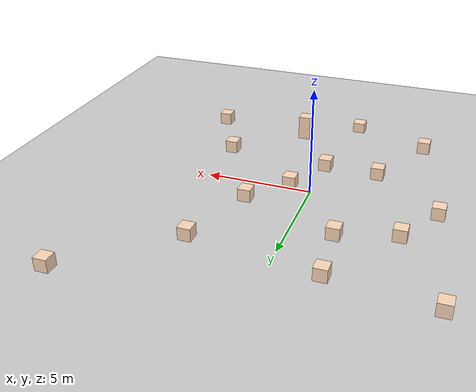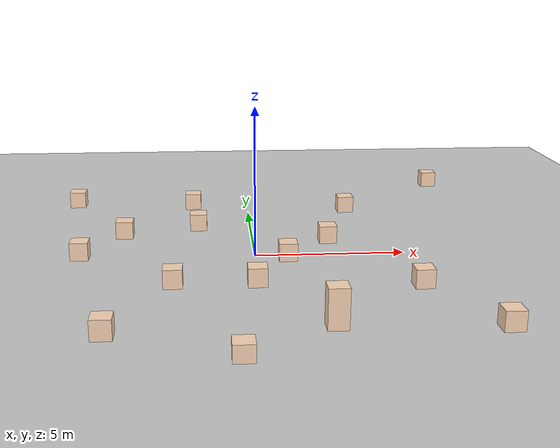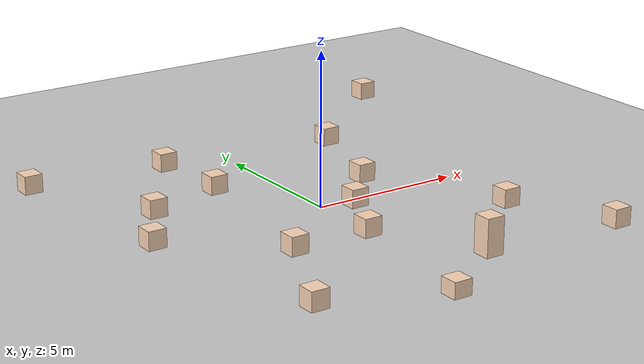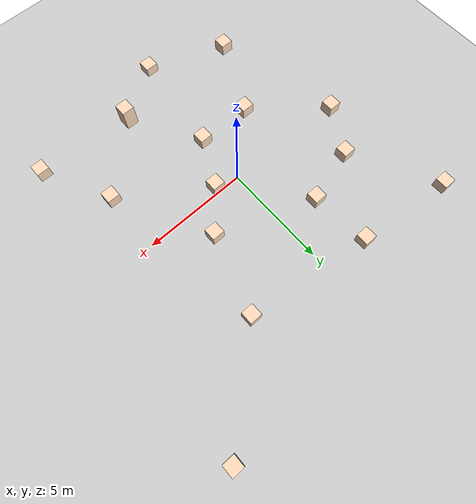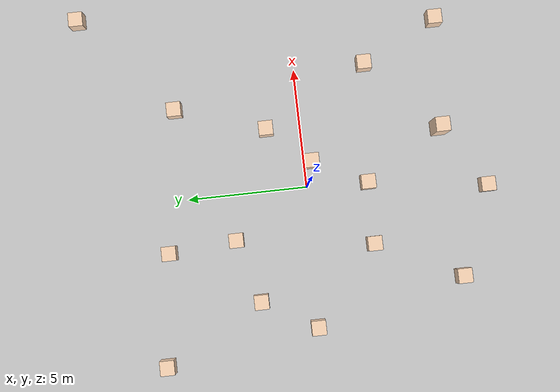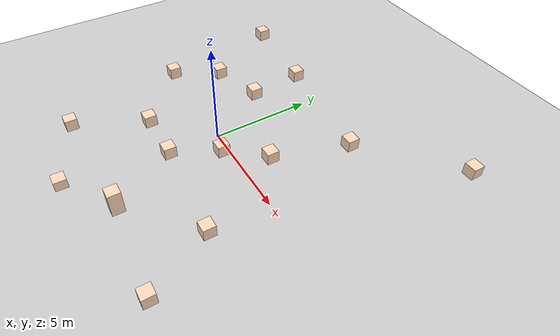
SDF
<sdf version="1.5">
 <world name="default">
  <light name="sun" type="directional">
   <pose>0 0 10 0 -0 0</pose>
   <diffuse>0.8 0.8 0.8 1</diffuse>
   <specular>0.2 0.2 0.2 1</specular>
   <attenuation>
    <range>1000</range>
    <constant>0.9</constant>
    <linear>0.01</linear>
    <quadratic>0.001</quadratic>
   </attenuation>
   <direction>-0.5 0.1 -0.9</direction>
  </light>
  <model name="ground_plane">
   <static>1</static>
   <link name="link">
    <collision name="collision">
     <geometry><plane><normal>0 0 1</normal><size>100 100</size></plane></geometry>
     <surface><friction><ode><mu>100</mu><mu2>50</mu2></ode></friction></surface>
    </collision>
    <visual name="visual">
     <cast_shadows>0</cast_shadows>
     <geometry><plane><normal>0 0 1</normal><size>100 100</size></plane></geometry>
     <material>
      <script><uri>file://media/materials/scripts/gazebo.material</uri><name>Gazebo/Grey</name></script>
     </material>
    </visual>
    <velocity_decay><linear>0</linear><angular>0</angular></velocity_decay>
   </link>
  </model>
  <model name="woods2">
   <link name="link_0">
    <inertial>
     <mass>1</mass>
     <inertia>
      <ixx>0.166667</ixx>
      <ixy>0</ixy>
      <ixz>0</ixz>
      <iyy>0.166667</iyy>
      <iyz>0</iyz>
      <izz>0.166667</izz>
     </inertia>
    </inertial>
    <pose>1.06197 -0.316445 -0.0125 0 -0 0</pose>
    <visual name="visual">
     <geometry><box><size>0.6 0.6 1.2</size></box></geometry>
     <material>
      <lighting>1</lighting>
      <script><uri>file://media/materials/scripts/gazebo.material</uri><name>Gazebo/Grey</name></script>
      <shader type="vertex"><normal_map>__default__</normal_map></shader>
      <ambient>1 0.854 0.725 1</ambient>
      <diffuse>0.7 0.7 0.7 1</diffuse>
      <specular>0.01 0.01 0.01 1</specular>
      <emissive>0 0 0 1</emissive>
     </material>
    </visual>
    <collision name="collision">
     <geometry><box><size>0.6 0.6 1.2</size></box></geometry>
     <surface>
      <friction>
       <ode><mu>1</mu><mu2>1</mu2><fdir1>0 0 0</fdir1><slip1>0</slip1><slip2>0</slip2></ode>
       <torsional>
        <coefficient>1</coefficient>
        <patch_radius>0</patch_radius>
        <surface_radius>0</surface_radius>
        <use_patch_radius>1</use_patch_radius>
        <ode><slip>0</slip></ode>
       </torsional>
      </friction>
      <bounce><restitution_coefficient>0</restitution_coefficient><threshold>1e+06</threshold></bounce>
      <contact>
       <collide_without_contact>0</collide_without_contact>
       <collide_without_contact_bitmask>1</collide_without_contact_bitmask>
       <collide_bitmask>1</collide_bitmask>
       <ode>
        <soft_cfm>0</soft_cfm>
        <soft_erp>0.2</soft_erp>
        <kp>1e+13</kp>
        <kd>1</kd>
        <max_vel>0.01</max_vel>
        <min_depth>0</min_depth>
       </ode>
       <bullet>
        <split_impulse>1</split_impulse>
        <split_impulse_penetration_threshold>-0.01</split_impulse_penetration_threshold>
        <soft_cfm>0</soft_cfm>
        <soft_erp>0.2</soft_erp>
        <kp>1e+13</kp>
        <kd>1</kd>
       </bullet>
      </contact>
     </surface>
    </collision>
   </link>
   <link name="link_0_clone">
    <inertial>
     <mass>1</mass>
     <inertia>
      <ixx>0.166667</ixx>
      <ixy>0</ixy>
      <ixz>0</ixz>
      <iyy>0.166667</iyy>
      <iyz>0</iyz>
      <izz>0.166667</izz>
     </inertia>
    </inertial>
    <pose>2.61216 1.45296 -0.0125 0 -0 0</pose>
    <visual name="visual">
     <geometry><box><size>0.6 0.6 1.2</size></box></geometry>
     <material>
      <lighting>1</lighting>
      <script><uri>file://media/materials/scripts/gazebo.material</uri><name>Gazebo/Grey</name></script>
      <shader type="vertex"><normal_map>__default__</normal_map></shader>
      <ambient>1 0.854 0.725 1</ambient>
      <diffuse>0.7 0.7 0.7 1</diffuse>
      <specular>0.01 0.01 0.01 1</specular>
      <emissive>0 0 0 1</emissive>
     </material>
    </visual>
    <collision name="collision">
     <geometry><box><size>0.6 0.6 1.2</size></box></geometry>
     <surface>
      <friction>
       <ode><mu>1</mu><mu2>1</mu2><fdir1>0 0 0</fdir1><slip1>0</slip1><slip2>0</slip2></ode>
       <torsional>
        <coefficient>1</coefficient>
        <patch_radius>0</patch_radius>
        <surface_radius>0</surface_radius>
        <use_patch_radius>1</use_patch_radius>
        <ode><slip>0</slip></ode>
       </torsional>
      </friction>
      <bounce><restitution_coefficient>0</restitution_coefficient><threshold>1e+06</threshold></bounce>
      <contact>
       <collide_without_contact>0</collide_without_contact>
       <collide_without_contact_bitmask>1</collide_without_contact_bitmask>
       <collide_bitmask>1</collide_bitmask>
       <ode>
        <soft_cfm>0</soft_cfm>
        <soft_erp>0.2</soft_erp>
        <kp>1e+13</kp>
        <kd>1</kd>
        <max_vel>0.01</max_vel>
        <min_depth>0</min_depth>
       </ode>
       <bullet>
        <split_impulse>1</split_impulse>
        <split_impulse_penetration_threshold>-0.01</split_impulse_penetration_threshold>
        <soft_cfm>0</soft_cfm>
        <soft_erp>0.2</soft_erp>
        <kp>1e+13</kp>
        <kd>1</kd>
       </bullet>
      </contact>
     </surface>
    </collision>
   </link>
   <link name="link_0_clone_0">
    <inertial>
     <mass>1</mass>
     <inertia>
      <ixx>0.166667</ixx>
      <ixy>0</ixy>
      <ixz>0</ixz>
      <iyy>0.166667</iyy>
      <iyz>0</iyz>
      <izz>0.166667</izz>
     </inertia>
    </inertial>
    <pose>-2.14536 5.97289 -0.0125 0 -0 0</pose>
    <visual name="visual">
     <geometry><box><size>0.6 0.6 1.2</size></box></geometry>
     <material>
      <lighting>1</lighting>
      <script><uri>file://media/materials/scripts/gazebo.material</uri><name>Gazebo/Grey</name></script>
      <shader type="vertex"><normal_map>__default__</normal_map></shader>
      <ambient>1 0.854 0.725 1</ambient>
      <diffuse>0.7 0.7 0.7 1</diffuse>
      <specular>0.01 0.01 0.01 1</specular>
      <emissive>0 0 0 1</emissive>
     </material>
    </visual>
    <collision name="collision">
     <geometry><box><size>0.6 0.6 1.2</size></box></geometry>
     <surface>
      <friction>
       <ode><mu>1</mu><mu2>1</mu2><fdir1>0 0 0</fdir1><slip1>0</slip1><slip2>0</slip2></ode>
       <torsional>
        <coefficient>1</coefficient>
        <patch_radius>0</patch_radius>
        <surface_radius>0</surface_radius>
        <use_patch_radius>1</use_patch_radius>
        <ode><slip>0</slip></ode>
       </torsional>
      </friction>
      <bounce><restitution_coefficient>0</restitution_coefficient><threshold>1e+06</threshold></bounce>
      <contact>
       <collide_without_contact>0</collide_without_contact>
       <collide_without_contact_bitmask>1</collide_without_contact_bitmask>
       <collide_bitmask>1</collide_bitmask>
       <ode>
        <soft_cfm>0</soft_cfm>
        <soft_erp>0.2</soft_erp>
        <kp>1e+13</kp>
        <kd>1</kd>
        <max_vel>0.01</max_vel>
        <min_depth>0</min_depth>
       </ode>
       <bullet>
        <split_impulse>1</split_impulse>
        <split_impulse_penetration_threshold>-0.01</split_impulse_penetration_threshold>
        <soft_cfm>0</soft_cfm>
        <soft_erp>0.2</soft_erp>
        <kp>1e+13</kp>
        <kd>1</kd>
       </bullet>
      </contact>
     </surface>
    </collision>
   </link>
   <link name="link_0_clone_1">
    <inertial>
     <mass>1</mass>
     <inertia>
      <ixx>0.166667</ixx>
      <ixy>0</ixy>
      <ixz>0</ixz>
      <iyy>0.166667</iyy>
      <iyz>0</iyz>
      <izz>0.166667</izz>
     </inertia>
    </inertial>
    <pose>-4.53022 2.38962 -0.0125 0 -0 0</pose>
    <visual name="visual">
     <geometry><box><size>0.6 0.6 1.2</size></box></geometry>
     <material>
      <lighting>1</lighting>
      <script><uri>file://media/materials/scripts/gazebo.material</uri><name>Gazebo/Grey</name></script>
      <shader type="vertex"><normal_map>__default__</normal_map></shader>
      <ambient>1 0.854 0.725 1</ambient>
      <diffuse>0.7 0.7 0.7 1</diffuse>
      <specular>0.01 0.01 0.01 1</specular>
      <emissive>0 0 0 1</emissive>
     </material>
    </visual>
    <collision name="collision">
     <geometry><box><size>0.6 0.6 1.2</size></box></geometry>
     <surface>
      <friction>
       <ode><mu>1</mu><mu2>1</mu2><fdir1>0 0 0</fdir1><slip1>0</slip1><slip2>0</slip2></ode>
       <torsional>
        <coefficient>1</coefficient>
        <patch_radius>0</patch_radius>
        <surface_radius>0</surface_radius>
        <use_patch_radius>1</use_patch_radius>
        <ode><slip>0</slip></ode>
       </torsional>
      </friction>
      <bounce><restitution_coefficient>0</restitution_coefficient><threshold>1e+06</threshold></bounce>
      <contact>
       <collide_without_contact>0</collide_without_contact>
       <collide_without_contact_bitmask>1</collide_without_contact_bitmask>
       <collide_bitmask>1</collide_bitmask>
       <ode>
        <soft_cfm>0</soft_cfm>
        <soft_erp>0.2</soft_erp>
        <kp>1e+13</kp>
        <kd>1</kd>
        <max_vel>0.01</max_vel>
        <min_depth>0</min_depth>
       </ode>
       <bullet>
        <split_impulse>1</split_impulse>
        <split_impulse_penetration_threshold>-0.01</split_impulse_penetration_threshold>
        <soft_cfm>0</soft_cfm>
        <soft_erp>0.2</soft_erp>
        <kp>1e+13</kp>
        <kd>1</kd>
       </bullet>
      </contact>
     </surface>
    </collision>
   </link>
   <link name="link_0_clone_10">
    <inertial>
     <mass>1</mass>
     <inertia>
      <ixx>0.166667</ixx>
      <ixy>0</ixy>
      <ixz>0</ixz>
      <iyy>0.166667</iyy>
      <iyz>0</iyz>
      <izz>0.166667</izz>
     </inertia>
    </inertial>
    <pose>8.07014 8.91882 -0.0125 0 -0 0</pose>
    <visual name="visual">
     <geometry><box><size>0.6 0.6 1.2</size></box></geometry>
     <material>
      <lighting>1</lighting>
      <script><uri>file://media/materials/scripts/gazebo.material</uri><name>Gazebo/Grey</name></script>
      <shader type="vertex"><normal_map>__default__</normal_map></shader>
      <ambient>1 0.854 0.725 1</ambient>
      <diffuse>0.7 0.7 0.7 1</diffuse>
      <specular>0.01 0.01 0.01 1</specular>
      <emissive>0 0 0 1</emissive>
     </material>
    </visual>
    <collision name="collision">
     <geometry><box><size>0.6 0.6 1.2</size></box></geometry>
     <surface>
      <friction>
       <ode><mu>1</mu><mu2>1</mu2><fdir1>0 0 0</fdir1><slip1>0</slip1><slip2>0</slip2></ode>
       <torsional>
        <coefficient>1</coefficient>
        <patch_radius>0</patch_radius>
        <surface_radius>0</surface_radius>
        <use_patch_radius>1</use_patch_radius>
        <ode><slip>0</slip></ode>
       </torsional>
      </friction>
      <bounce><restitution_coefficient>0</restitution_coefficient><threshold>1e+06</threshold></bounce>
      <contact>
       <collide_without_contact>0</collide_without_contact>
       <collide_without_contact_bitmask>1</collide_without_contact_bitmask>
       <collide_bitmask>1</collide_bitmask>
       <ode>
        <soft_cfm>0</soft_cfm>
        <soft_erp>0.2</soft_erp>
        <kp>1e+13</kp>
        <kd>1</kd>
        <max_vel>0.01</max_vel>
        <min_depth>0</min_depth>
       </ode>
       <bullet>
        <split_impulse>1</split_impulse>
        <split_impulse_penetration_threshold>-0.01</split_impulse_penetration_threshold>
        <soft_cfm>0</soft_cfm>
        <soft_erp>0.2</soft_erp>
        <kp>1e+13</kp>
        <kd>1</kd>
       </bullet>
      </contact>
     </surface>
    </collision>
   </link>
   <link name="link_0_clone_11">
    <inertial>
     <mass>1</mass>
     <inertia>
      <ixx>0.166667</ixx>
      <ixy>0</ixy>
      <ixz>0</ixz>
      <iyy>0.166667</iyy>
      <iyz>0</iyz>
      <izz>0.166667</izz>
     </inertia>
    </inertial>
    <pose>-1.91155 3.16208 -0.0125 0 -0 0</pose>
    <visual name="visual">
     <geometry><box><size>0.6 0.6 1.2</size></box></geometry>
     <material>
      <lighting>1</lighting>
      <script><uri>file://media/materials/scripts/gazebo.material</uri><name>Gazebo/Grey</name></script>
      <shader type="vertex"><normal_map>__default__</normal_map></shader>
      <ambient>1 0.854 0.725 1</ambient>
      <diffuse>0.7 0.7 0.7 1</diffuse>
      <specular>0.01 0.01 0.01 1</specular>
      <emissive>0 0 0 1</emissive>
     </material>
    </visual>
    <collision name="collision">
     <geometry><box><size>0.6 0.6 1.2</size></box></geometry>
     <surface>
      <friction>
       <ode><mu>1</mu><mu2>1</mu2><fdir1>0 0 0</fdir1><slip1>0</slip1><slip2>0</slip2></ode>
       <torsional>
        <coefficient>1</coefficient>
        <patch_radius>0</patch_radius>
        <surface_radius>0</surface_radius>
        <use_patch_radius>1</use_patch_radius>
        <ode><slip>0</slip></ode>
       </torsional>
      </friction>
      <bounce><restitution_coefficient>0</restitution_coefficient><threshold>1e+06</threshold></bounce>
      <contact>
       <collide_without_contact>0</collide_without_contact>
       <collide_without_contact_bitmask>1</collide_without_contact_bitmask>
       <collide_bitmask>1</collide_bitmask>
       <ode>
        <soft_cfm>0</soft_cfm>
        <soft_erp>0.2</soft_erp>
        <kp>1e+13</kp>
        <kd>1</kd>
        <max_vel>0.01</max_vel>
        <min_depth>0</min_depth>
       </ode>
       <bullet>
        <split_impulse>1</split_impulse>
        <split_impulse_penetration_threshold>-0.01</split_impulse_penetration_threshold>
        <soft_cfm>0</soft_cfm>
        <soft_erp>0.2</soft_erp>
        <kp>1e+13</kp>
        <kd>1</kd>
       </bullet>
      </contact>
     </surface>
    </collision>
   </link>
   <link name="link_0_clone_12">
    <inertial>
     <mass>1</mass>
     <inertia>
      <ixx>0.166667</ixx>
      <ixy>0</ixy>
      <ixz>0</ixz>
      <iyy>0.166667</iyy>
      <iyz>0</iyz>
      <izz>0.166667</izz>
     </inertia>
    </inertial>
    <pose>-5.81709 0.173339 -0.0125 0 -0 0</pose>
    <visual name="visual">
     <geometry><box><size>0.6 0.6 1.2</size></box></geometry>
     <material>
      <lighting>1</lighting>
      <script><uri>file://media/materials/scripts/gazebo.material</uri><name>Gazebo/Grey</name></script>
      <shader type="vertex"><normal_map>__default__</normal_map></shader>
      <ambient>1 0.854 0.725 1</ambient>
      <diffuse>0.7 0.7 0.7 1</diffuse>
      <specular>0.01 0.01 0.01 1</specular>
      <emissive>0 0 0 1</emissive>
     </material>
    </visual>
    <collision name="collision">
     <geometry><box><size>0.6 0.6 1.2</size></box></geometry>
     <surface>
      <friction>
       <ode><mu>1</mu><mu2>1</mu2><fdir1>0 0 0</fdir1><slip1>0</slip1><slip2>0</slip2></ode>
       <torsional>
        <coefficient>1</coefficient>
        <patch_radius>0</patch_radius>
        <surface_radius>0</surface_radius>
        <use_patch_radius>1</use_patch_radius>
        <ode><slip>0</slip></ode>
       </torsional>
      </friction>
      <bounce><restitution_coefficient>0</restitution_coefficient><threshold>1e+06</threshold></bounce>
      <contact>
       <collide_without_contact>0</collide_without_contact>
       <collide_without_contact_bitmask>1</collide_without_contact_bitmask>
       <collide_bitmask>1</collide_bitmask>
       <ode>
        <soft_cfm>0</soft_cfm>
        <soft_erp>0.2</soft_erp>
        <kp>1e+13</kp>
        <kd>1</kd>
        <max_vel>0.01</max_vel>
        <min_depth>0</min_depth>
       </ode>
       <bullet>
        <split_impulse>1</split_impulse>
        <split_impulse_penetration_threshold>-0.01</split_impulse_penetration_threshold>
        <soft_cfm>0</soft_cfm>
        <soft_erp>0.2</soft_erp>
        <kp>1e+13</kp>
        <kd>1</kd>
       </bullet>
      </contact>
     </surface>
    </collision>
   </link>
   <link name="link_0_clone_13">
    <inertial>
     <mass>1</mass>
     <inertia>
      <ixx>0.166667</ixx>
      <ixy>0</ixy>
      <ixz>0</ixz>
      <iyy>0.166667</iyy>
      <iyz>0</iyz>
      <izz>0.166667</izz>
     </inertia>
    </inertial>
    <pose>-0.708334 -7.49828 -0.1125 0 -0 0</pose>
    <visual name="visual">
     <geometry><box><size>0.6 0.6 1.2</size></box></geometry>
     <material>
      <lighting>1</lighting>
      <script><uri>file://media/materials/scripts/gazebo.material</uri><name>Gazebo/Grey</name></script>
      <shader type="vertex"><normal_map>__default__</normal_map></shader>
      <ambient>1 0.854 0.725 1</ambient>
      <diffuse>0.7 0.7 0.7 1</diffuse>
      <specular>0.01 0.01 0.01 1</specular>
      <emissive>0 0 0 1</emissive>
     </material>
    </visual>
    <collision name="collision">
     <geometry><box><size>0.6 0.6 1.2</size></box></geometry>
     <surface>
      <friction>
       <ode><mu>1</mu><mu2>1</mu2><fdir1>0 0 0</fdir1><slip1>0</slip1><slip2>0</slip2></ode>
       <torsional>
        <coefficient>1</coefficient>
        <patch_radius>0</patch_radius>
        <surface_radius>0</surface_radius>
        <use_patch_radius>1</use_patch_radius>
        <ode><slip>0</slip></ode>
       </torsional>
      </friction>
      <bounce><restitution_coefficient>0</restitution_coefficient><threshold>1e+06</threshold></bounce>
      <contact>
       <collide_without_contact>0</collide_without_contact>
       <collide_without_contact_bitmask>1</collide_without_contact_bitmask>
       <collide_bitmask>1</collide_bitmask>
       <ode>
        <soft_cfm>0</soft_cfm>
        <soft_erp>0.2</soft_erp>
        <kp>1e+13</kp>
        <kd>1</kd>
        <max_vel>0.01</max_vel>
        <min_depth>0</min_depth>
       </ode>
       <bullet>
        <split_impulse>1</split_impulse>
        <split_impulse_penetration_threshold>-0.01</split_impulse_penetration_threshold>
        <soft_cfm>0</soft_cfm>
        <soft_erp>0.2</soft_erp>
        <kp>1e+13</kp>
        <kd>1</kd>
       </bullet>
      </contact>
     </surface>
    </collision>
   </link>
   <link name="link_0_clone_2">
    <inertial>
     <mass>1</mass>
     <inertia>
      <ixx>0.166667</ixx>
      <ixy>0</ixy>
      <ixz>0</ixz>
      <iyy>0.166667</iyy>
      <iyz>0</iyz>
      <izz>0.166667</izz>
     </inertia>
    </inertial>
    <pose>-2.64889 -2.51391 -0.0125 0 -0 0</pose>
    <visual name="visual">
     <geometry><box><size>0.6 0.6 1.2</size></box></geometry>
     <material>
      <lighting>1</lighting>
      <script><uri>file://media/materials/scripts/gazebo.material</uri><name>Gazebo/Grey</name></script>
      <shader type="vertex"><normal_map>__default__</normal_map></shader>
      <ambient>1 0.854 0.725 1</ambient>
      <diffuse>0.7 0.7 0.7 1</diffuse>
      <specular>0.01 0.01 0.01 1</specular>
      <emissive>0 0 0 1</emissive>
     </material>
    </visual>
    <collision name="collision">
     <geometry><box><size>0.6 0.6 1.2</size></box></geometry>
     <surface>
      <friction>
       <ode><mu>1</mu><mu2>1</mu2><fdir1>0 0 0</fdir1><slip1>0</slip1><slip2>0</slip2></ode>
       <torsional>
        <coefficient>1</coefficient>
        <patch_radius>0</patch_radius>
        <surface_radius>0</surface_radius>
        <use_patch_radius>1</use_patch_radius>
        <ode><slip>0</slip></ode>
       </torsional>
      </friction>
      <bounce><restitution_coefficient>0</restitution_coefficient><threshold>1e+06</threshold></bounce>
      <contact>
       <collide_without_contact>0</collide_without_contact>
       <collide_without_contact_bitmask>1</collide_without_contact_bitmask>
       <collide_bitmask>1</collide_bitmask>
       <ode>
        <soft_cfm>0</soft_cfm>
        <soft_erp>0.2</soft_erp>
        <kp>1e+13</kp>
        <kd>1</kd>
        <max_vel>0.01</max_vel>
        <min_depth>0</min_depth>
       </ode>
       <bullet>
        <split_impulse>1</split_impulse>
        <split_impulse_penetration_threshold>-0.01</split_impulse_penetration_threshold>
        <soft_cfm>0</soft_cfm>
        <soft_erp>0.2</soft_erp>
        <kp>1e+13</kp>
        <kd>1</kd>
       </bullet>
      </contact>
     </surface>
    </collision>
   </link>
   <link name="link_0_clone_3">
    <inertial>
     <mass>1</mass>
     <inertia>
      <ixx>0.166667</ixx>
      <ixy>0</ixy>
      <ixz>0</ixz>
      <iyy>0.166667</iyy>
      <iyz>0</iyz>
      <izz>0.166667</izz>
     </inertia>
    </inertial>
    <pose>3.81419 5.19045 -0.0125 0 -0 0</pose>
    <visual name="visual">
     <geometry><box><size>0.6 0.6 1.2</size></box></geometry>
     <material>
      <lighting>1</lighting>
      <script><uri>file://media/materials/scripts/gazebo.material</uri><name>Gazebo/Grey</name></script>
      <shader type="vertex"><normal_map>__default__</normal_map></shader>
      <ambient>1 0.854 0.725 1</ambient>
      <diffuse>0.7 0.7 0.7 1</diffuse>
      <specular>0.01 0.01 0.01 1</specular>
      <emissive>0 0 0 1</emissive>
     </material>
    </visual>
    <collision name="collision">
     <geometry><box><size>0.6 0.6 1.2</size></box></geometry>
     <surface>
      <friction>
       <ode><mu>1</mu><mu2>1</mu2><fdir1>0 0 0</fdir1><slip1>0</slip1><slip2>0</slip2></ode>
       <torsional>
        <coefficient>1</coefficient>
        <patch_radius>0</patch_radius>
        <surface_radius>0</surface_radius>
        <use_patch_radius>1</use_patch_radius>
        <ode><slip>0</slip></ode>
       </torsional>
      </friction>
      <bounce><restitution_coefficient>0</restitution_coefficient><threshold>1e+06</threshold></bounce>
      <contact>
       <collide_without_contact>0</collide_without_contact>
       <collide_without_contact_bitmask>1</collide_without_contact_bitmask>
       <collide_bitmask>1</collide_bitmask>
       <ode>
        <soft_cfm>0</soft_cfm>
        <soft_erp>0.2</soft_erp>
        <kp>1e+13</kp>
        <kd>1</kd>
        <max_vel>0.01</max_vel>
        <min_depth>0</min_depth>
       </ode>
       <bullet>
        <split_impulse>1</split_impulse>
        <split_impulse_penetration_threshold>-0.01</split_impulse_penetration_threshold>
        <soft_cfm>0</soft_cfm>
        <soft_erp>0.2</soft_erp>
        <kp>1e+13</kp>
        <kd>1</kd>
       </bullet>
      </contact>
     </surface>
    </collision>
   </link>
   <link name="link_0_clone_4">
    <inertial>
     <mass>1</mass>
     <inertia>
      <ixx>0.166667</ixx>
      <ixy>0</ixy>
      <ixz>0</ixz>
      <iyy>0.166667</iyy>
      <iyz>0</iyz>
      <izz>0.166667</izz>
     </inertia>
    </inertial>
    <pose>1.88368 -5.76015 0.2875 0 -0 0</pose>
    <visual name="visual">
     <geometry><box><size>0.6 0.6 1.8</size></box></geometry>
     <material>
      <lighting>1</lighting>
      <script><uri>file://media/materials/scripts/gazebo.material</uri><name>Gazebo/Grey</name></script>
      <shader type="vertex"><normal_map>__default__</normal_map></shader>
      <ambient>1 0.854 0.725 1</ambient>
      <diffuse>0.7 0.7 0.7 1</diffuse>
      <specular>0.01 0.01 0.01 1</specular>
      <emissive>0 0 0 1</emissive>
     </material>
    </visual>
    <collision name="collision">
     <geometry><box><size>0.6 0.6 1.8</size></box></geometry>
     <surface>
      <friction>
       <ode><mu>1</mu><mu2>1</mu2><fdir1>0 0 0</fdir1><slip1>0</slip1><slip2>0</slip2></ode>
       <torsional>
        <coefficient>1</coefficient>
        <patch_radius>0</patch_radius>
        <surface_radius>0</surface_radius>
        <use_patch_radius>1</use_patch_radius>
        <ode><slip>0</slip></ode>
       </torsional>
      </friction>
      <bounce><restitution_coefficient>0</restitution_coefficient><threshold>1e+06</threshold></bounce>
      <contact>
       <collide_without_contact>0</collide_without_contact>
       <collide_without_contact_bitmask>1</collide_without_contact_bitmask>
       <collide_bitmask>1</collide_bitmask>
       <ode>
        <soft_cfm>0</soft_cfm>
        <soft_erp>0.2</soft_erp>
        <kp>1e+13</kp>
        <kd>1</kd>
        <max_vel>0.01</max_vel>
        <min_depth>0</min_depth>
       </ode>
       <bullet>
        <split_impulse>1</split_impulse>
        <split_impulse_penetration_threshold>-0.01</split_impulse_penetration_threshold>
        <soft_cfm>0</soft_cfm>
        <soft_erp>0.2</soft_erp>
        <kp>1e+13</kp>
        <kd>1</kd>
       </bullet>
      </contact>
     </surface>
    </collision>
   </link>
   <link name="link_0_clone_5">
    <inertial>
     <mass>1</mass>
     <inertia>
      <ixx>0.166667</ixx>
      <ixy>0</ixy>
      <ixz>0</ixz>
      <iyy>0.166667</iyy>
      <iyz>0</iyz>
      <izz>0.166667</izz>
     </inertia>
    </inertial>
    <pose>6.5516 -6.13287 -0.0125 0 -0 0</pose>
    <visual name="visual">
     <geometry><box><size>0.6 0.6 1.2</size></box></geometry>
     <material>
      <lighting>1</lighting>
      <script><uri>file://media/materials/scripts/gazebo.material</uri><name>Gazebo/Grey</name></script>
      <shader type="vertex"><normal_map>__default__</normal_map></shader>
      <ambient>1 0.854 0.725 1</ambient>
      <diffuse>0.7 0.7 0.7 1</diffuse>
      <specular>0.01 0.01 0.01 1</specular>
      <emissive>0 0 0 1</emissive>
     </material>
    </visual>
    <collision name="collision">
     <geometry><box><size>0.6 0.6 1.2</size></box></geometry>
     <surface>
      <friction>
       <ode><mu>1</mu><mu2>1</mu2><fdir1>0 0 0</fdir1><slip1>0</slip1><slip2>0</slip2></ode>
       <torsional>
        <coefficient>1</coefficient>
        <patch_radius>0</patch_radius>
        <surface_radius>0</surface_radius>
        <use_patch_radius>1</use_patch_radius>
        <ode><slip>0</slip></ode>
       </torsional>
      </friction>
      <bounce><restitution_coefficient>0</restitution_coefficient><threshold>1e+06</threshold></bounce>
      <contact>
       <collide_without_contact>0</collide_without_contact>
       <collide_without_contact_bitmask>1</collide_without_contact_bitmask>
       <collide_bitmask>1</collide_bitmask>
       <ode>
        <soft_cfm>0</soft_cfm>
        <soft_erp>0.2</soft_erp>
        <kp>1e+13</kp>
        <kd>1</kd>
        <max_vel>0.01</max_vel>
        <min_depth>0</min_depth>
       </ode>
       <bullet>
        <split_impulse>1</split_impulse>
        <split_impulse_penetration_threshold>-0.01</split_impulse_penetration_threshold>
        <soft_cfm>0</soft_cfm>
        <soft_erp>0.2</soft_erp>
        <kp>1e+13</kp>
        <kd>1</kd>
       </bullet>
      </contact>
     </surface>
    </collision>
   </link>
   <link name="link_0_clone_6">
    <inertial>
     <mass>1</mass>
     <inertia>
      <ixx>0.166667</ixx>
      <ixy>0</ixy>
      <ixz>0</ixz>
      <iyy>0.166667</iyy>
      <iyz>0</iyz>
      <izz>0.166667</izz>
     </inertia>
    </inertial>
    <pose>-0.07297 -2.54682 -0.0125 0 -0 0</pose>
    <visual name="visual">
     <geometry><box><size>0.6 0.6 1.2</size></box></geometry>
     <material>
      <lighting>1</lighting>
      <script><uri>file://media/materials/scripts/gazebo.material</uri><name>Gazebo/Grey</name></script>
      <shader type="vertex"><normal_map>__default__</normal_map></shader>
      <ambient>1 0.854 0.725 1</ambient>
      <diffuse>0.7 0.7 0.7 1</diffuse>
      <specular>0.01 0.01 0.01 1</specular>
      <emissive>0 0 0 1</emissive>
     </material>
    </visual>
    <collision name="collision">
     <geometry><box><size>0.6 0.6 1.2</size></box></geometry>
     <surface>
      <friction>
       <ode><mu>1</mu><mu2>1</mu2><fdir1>0 0 0</fdir1><slip1>0</slip1><slip2>0</slip2></ode>
       <torsional>
        <coefficient>1</coefficient>
        <patch_radius>0</patch_radius>
        <surface_radius>0</surface_radius>
        <use_patch_radius>1</use_patch_radius>
        <ode><slip>0</slip></ode>
       </torsional>
      </friction>
      <bounce><restitution_coefficient>0</restitution_coefficient><threshold>1e+06</threshold></bounce>
      <contact>
       <collide_without_contact>0</collide_without_contact>
       <collide_without_contact_bitmask>1</collide_without_contact_bitmask>
       <collide_bitmask>1</collide_bitmask>
       <ode>
        <soft_cfm>0</soft_cfm>
        <soft_erp>0.2</soft_erp>
        <kp>1e+13</kp>
        <kd>1</kd>
        <max_vel>0.01</max_vel>
        <min_depth>0</min_depth>
       </ode>
       <bullet>
        <split_impulse>1</split_impulse>
        <split_impulse_penetration_threshold>-0.01</split_impulse_penetration_threshold>
        <soft_cfm>0</soft_cfm>
        <soft_erp>0.2</soft_erp>
        <kp>1e+13</kp>
        <kd>1</kd>
       </bullet>
      </contact>
     </surface>
    </collision>
   </link>
   <link name="link_0_clone_7">
    <inertial>
     <mass>1</mass>
     <inertia>
      <ixx>0.166667</ixx>
      <ixy>0</ixy>
      <ixz>0</ixz>
      <iyy>0.166667</iyy>
      <iyz>0</iyz>
      <izz>0.166667</izz>
     </inertia>
    </inertial>
    <pose>4.95134 -2.94764 -0.0125 0 -0 0</pose>
    <visual name="visual">
     <geometry><box><size>0.6 0.6 1.2</size></box></geometry>
     <material>
      <lighting>1</lighting>
      <script><uri>file://media/materials/scripts/gazebo.material</uri><name>Gazebo/Grey</name></script>
      <shader type="vertex"><normal_map>__default__</normal_map></shader>
      <ambient>1 0.854 0.725 1</ambient>
      <diffuse>0.7 0.7 0.7 1</diffuse>
      <specular>0.01 0.01 0.01 1</specular>
      <emissive>0 0 0 1</emissive>
     </material>
    </visual>
    <collision name="collision">
     <geometry><box><size>0.6 0.6 1.2</size></box></geometry>
     <surface>
      <friction>
       <ode><mu>1</mu><mu2>1</mu2><fdir1>0 0 0</fdir1><slip1>0</slip1><slip2>0</slip2></ode>
       <torsional>
        <coefficient>1</coefficient>
        <patch_radius>0</patch_radius>
        <surface_radius>0</surface_radius>
        <use_patch_radius>1</use_patch_radius>
        <ode><slip>0</slip></ode>
       </torsional>
      </friction>
      <bounce><restitution_coefficient>0</restitution_coefficient><threshold>1e+06</threshold></bounce>
      <contact>
       <collide_without_contact>0</collide_without_contact>
       <collide_without_contact_bitmask>1</collide_without_contact_bitmask>
       <collide_bitmask>1</collide_bitmask>
       <ode>
        <soft_cfm>0</soft_cfm>
        <soft_erp>0.2</soft_erp>
        <kp>1e+13</kp>
        <kd>1</kd>
        <max_vel>0.01</max_vel>
        <min_depth>0</min_depth>
       </ode>
       <bullet>
        <split_impulse>1</split_impulse>
        <split_impulse_penetration_threshold>-0.01</split_impulse_penetration_threshold>
        <soft_cfm>0</soft_cfm>
        <soft_erp>0.2</soft_erp>
        <kp>1e+13</kp>
        <kd>1</kd>
       </bullet>
      </contact>
     </surface>
    </collision>
   </link>
   <link name="link_0_clone_8">
    <inertial>
     <mass>1</mass>
     <inertia>
      <ixx>0.166667</ixx>
      <ixy>0</ixy>
      <ixz>0</ixz>
      <iyy>0.166667</iyy>
      <iyz>0</iyz>
      <izz>0.166667</izz>
     </inertia>
    </inertial>
    <pose>-6.7461 6.48273 -0.0125 0 -0 0</pose>
    <visual name="visual">
     <geometry><box><size>0.6 0.6 1.2</size></box></geometry>
     <material>
      <lighting>1</lighting>
      <script><uri>file://media/materials/scripts/gazebo.material</uri><name>Gazebo/Grey</name></script>
      <shader type="vertex"><normal_map>__default__</normal_map></shader>
      <ambient>1 0.854 0.725 1</ambient>
      <diffuse>0.7 0.7 0.7 1</diffuse>
      <specular>0.01 0.01 0.01 1</specular>
      <emissive>0 0 0 1</emissive>
     </material>
    </visual>
    <collision name="collision">
     <geometry><box><size>0.6 0.6 1.2</size></box></geometry>
     <surface>
      <friction>
       <ode><mu>1</mu><mu2>1</mu2><fdir1>0 0 0</fdir1><slip1>0</slip1><slip2>0</slip2></ode>
       <torsional>
        <coefficient>1</coefficient>
        <patch_radius>0</patch_radius>
        <surface_radius>0</surface_radius>
        <use_patch_radius>1</use_patch_radius>
        <ode><slip>0</slip></ode>
       </torsional>
      </friction>
      <bounce><restitution_coefficient>0</restitution_coefficient><threshold>1e+06</threshold></bounce>
      <contact>
       <collide_without_contact>0</collide_without_contact>
       <collide_without_contact_bitmask>1</collide_without_contact_bitmask>
       <collide_bitmask>1</collide_bitmask>
       <ode>
        <soft_cfm>0</soft_cfm>
        <soft_erp>0.2</soft_erp>
        <kp>1e+13</kp>
        <kd>1</kd>
        <max_vel>0.01</max_vel>
        <min_depth>0</min_depth>
       </ode>
       <bullet>
        <split_impulse>1</split_impulse>
        <split_impulse_penetration_threshold>-0.01</split_impulse_penetration_threshold>
        <soft_cfm>0</soft_cfm>
        <soft_erp>0.2</soft_erp>
        <kp>1e+13</kp>
        <kd>1</kd>
       </bullet>
      </contact>
     </surface>
    </collision>
   </link>
   <link name="link_0_clone_9">
    <inertial>
     <mass>1</mass>
     <inertia>
      <ixx>0.166667</ixx>
      <ixy>0</ixy>
      <ixz>0</ixz>
      <iyy>0.166667</iyy>
      <iyz>0</iyz>
      <izz>0.166667</izz>
     </inertia>
    </inertial>
    <pose>-4.36453 -6.02676 -0.0125 0 -0 0</pose>
    <visual name="visual">
     <geometry><box><size>0.6 0.6 1.2</size></box></geometry>
     <material>
      <lighting>1</lighting>
      <script><uri>file://media/materials/scripts/gazebo.material</uri><name>Gazebo/Grey</name></script>
      <shader type="vertex"><normal_map>__default__</normal_map></shader>
      <ambient>1 0.854 0.725 1</ambient>
      <diffuse>0.7 0.7 0.7 1</diffuse>
      <specular>0.01 0.01 0.01 1</specular>
      <emissive>0 0 0 1</emissive>
     </material>
    </visual>
    <collision name="collision">
     <geometry><box><size>0.6 0.6 1.2</size></box></geometry>
     <surface>
      <friction>
       <ode><mu>1</mu><mu2>1</mu2><fdir1>0 0 0</fdir1><slip1>0</slip1><slip2>0</slip2></ode>
       <torsional>
        <coefficient>1</coefficient>
        <patch_radius>0</patch_radius>
        <surface_radius>0</surface_radius>
        <use_patch_radius>1</use_patch_radius>
        <ode><slip>0</slip></ode>
       </torsional>
      </friction>
      <bounce><restitution_coefficient>0</restitution_coefficient><threshold>1e+06</threshold></bounce>
      <contact>
       <collide_without_contact>0</collide_without_contact>
       <collide_without_contact_bitmask>1</collide_without_contact_bitmask>
       <collide_bitmask>1</collide_bitmask>
       <ode>
        <soft_cfm>0</soft_cfm>
        <soft_erp>0.2</soft_erp>
        <kp>1e+13</kp>
        <kd>1</kd>
        <max_vel>0.01</max_vel>
        <min_depth>0</min_depth>
       </ode>
       <bullet>
        <split_impulse>1</split_impulse>
        <split_impulse_penetration_threshold>-0.01</split_impulse_penetration_threshold>
        <soft_cfm>0</soft_cfm>
        <soft_erp>0.2</soft_erp>
        <kp>1e+13</kp>
        <kd>1</kd>
       </bullet>
      </contact>
     </surface>
    </collision>
   </link>
   <static>0</static>
  </model>
  <physics type="ode">
   <gravity>0 0 -9.81</gravity>
   <simbody>
    <accuracy>0.005</accuracy>
    <max_transient_velocity>0.005</max_transient_velocity>
    <contact><stiffness>1e8</stiffness><dissipation>20.0</dissipation></contact>
   </simbody>
   <ode>
    <solver>
     <use_dynamic_moi_rescaling>true</use_dynamic_moi_rescaling>
     <type>quick</type>
     <iters>200</iters>
     <sor>1.0</sor>
    </solver>
    <constraints>
     <cfm>0.0</cfm>
     <erp>0.2</erp>
     <contact_max_correcting_vel>100.0</contact_max_correcting_vel>
     <contact_surface_layer>0.0</contact_surface_layer>
    </constraints>
   </ode>
   <real_time_update_rate>1000</real_time_update_rate>
   <max_step_size>0.001</max_step_size>
  </physics>
  <scene><ambient>0.4 0.4 0.4 1</ambient><background>0.7 0.7 0.7 1</background><shadows>1</shadows></scene>
  <spherical_coordinates>
   <surface_model>EARTH_WGS84</surface_model>
   <latitude_deg>0</latitude_deg>
   <longitude_deg>0</longitude_deg>
   <elevation>0</elevation>
   <heading_deg>0</heading_deg>
  </spherical_coordinates>
 </world>
</sdf>
